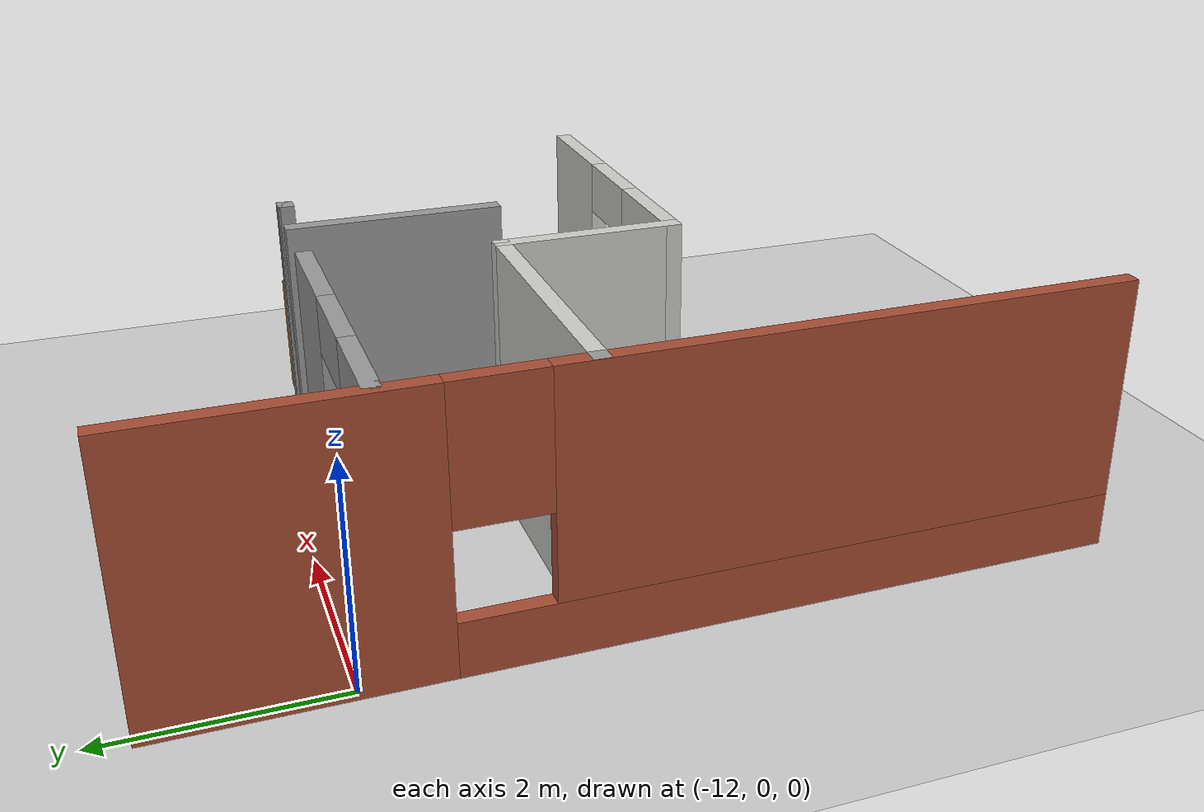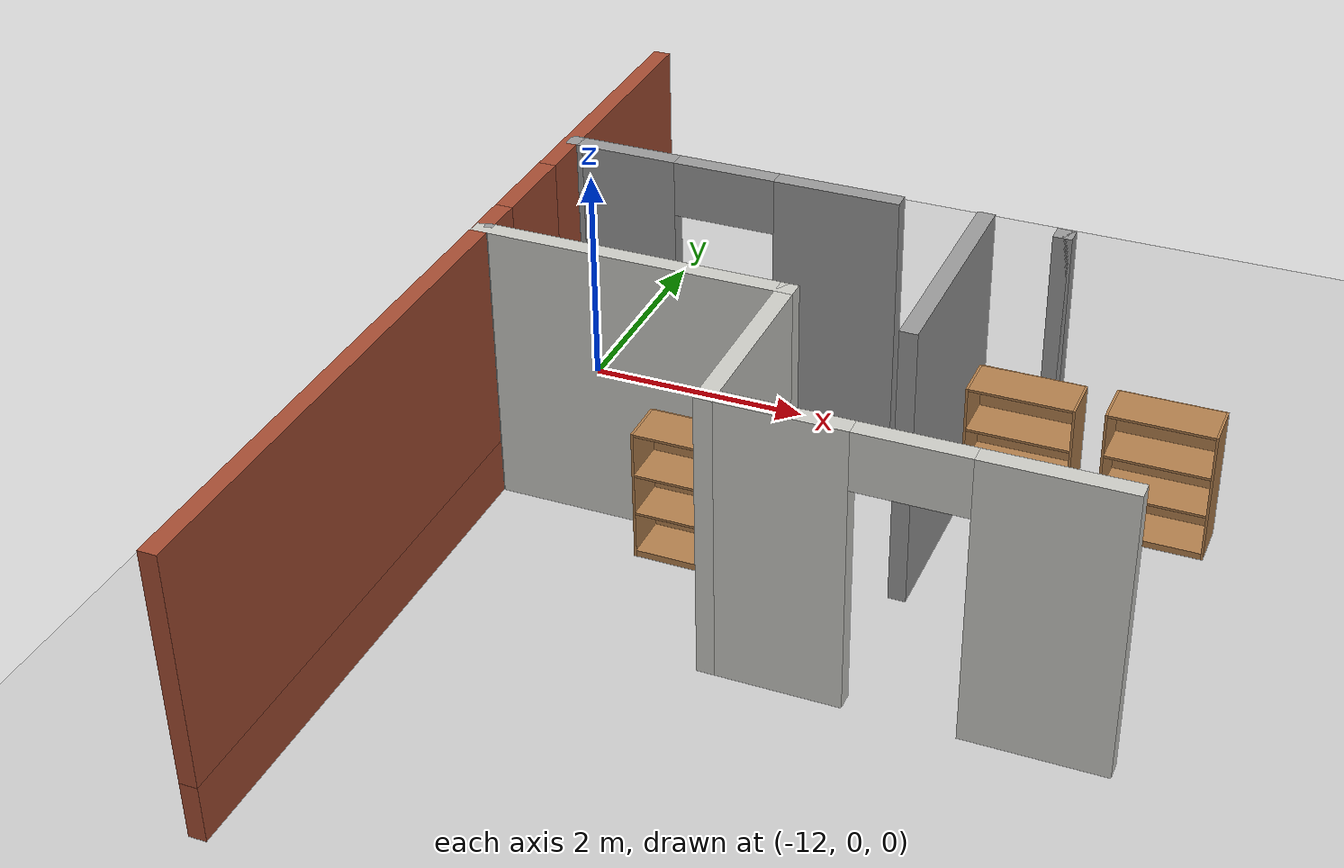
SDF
<sdf version="1.6">
 <world name="default">
  <model name="ground_plane">
   <static>1</static>
   <link name="link">
    <collision name="collision">
     <geometry><plane><normal>0 0 1</normal><size>100 100</size></plane></geometry>
     <surface><friction><ode><mu>100</mu><mu2>50</mu2></ode></friction></surface>
    </collision>
    <visual name="visual">
     <cast_shadows>0</cast_shadows>
     <geometry><plane><normal>0 0 1</normal><size>100 100</size></plane></geometry>
     <material>
      <script><uri>file://media/materials/scripts/gazebo.material</uri><name>Gazebo/Grey</name></script>
     </material>
    </visual>
   </link>
  </model>
  <model name="Building">
   <link name="Wall_0">
    <pose>-5.83944 -1.9 0 0 0 -1.5708</pose>
    <visual name="Wall_0_Visual_0">
     <pose>-2.91813 0 1.25 0 -0 0</pose>
     <geometry><box><size>2.41374 0.15 2.5</size></box></geometry>
     <material>
      <script><uri>file://media/materials/scripts/gazebo.material</uri><name>Gazebo/Bricks</name></script>
      <ambient>1 1 1 1</ambient>
      <shader type="pixel"/>
      <diffuse>1 1 1 1</diffuse>
      <specular>0.2 0.2 0.2 1</specular>
      <emissive>0 0 0 1</emissive>
     </material>
     <meta><layer>0</layer></meta>
    </visual>
    <visual name="Wall_0_Visual_1">
     <pose>1.20687 0 0.25 0 -0 0</pose>
     <geometry><box><size>5.83626 0.15 0.5</size></box></geometry>
     <material>
      <script><uri>file://media/materials/scripts/gazebo.material</uri><name>Gazebo/Bricks</name></script>
      <ambient>1 1 1 1</ambient>
      <shader type="pixel"/>
      <diffuse>1 1 1 1</diffuse>
      <specular>0.2 0.2 0.2 1</specular>
      <emissive>0 0 0 1</emissive>
     </material>
     <meta><layer>0</layer></meta>
    </visual>
    <visual name="Wall_0_Visual_2">
     <pose>1.60687 0 1.5 0 -0 0</pose>
     <geometry><box><size>5.03626 0.15 2</size></box></geometry>
     <material>
      <script><uri>file://media/materials/scripts/gazebo.material</uri><name>Gazebo/Bricks</name></script>
      <ambient>1 1 1 1</ambient>
      <shader type="pixel"/>
      <diffuse>1 1 1 1</diffuse>
      <specular>0.2 0.2 0.2 1</specular>
      <emissive>0 0 0 1</emissive>
     </material>
     <meta><layer>0</layer></meta>
    </visual>
    <visual name="Wall_0_Visual_3">
     <pose>-1.31126 0 1.9 0 -0 0</pose>
     <geometry><box><size>0.8 0.15 1.2</size></box></geometry>
     <material>
      <script><uri>file://media/materials/scripts/gazebo.material</uri><name>Gazebo/Bricks</name></script>
      <ambient>1 1 1 1</ambient>
      <shader type="pixel"/>
      <diffuse>1 1 1 1</diffuse>
      <specular>0.2 0.2 0.2 1</specular>
      <emissive>0 0 0 1</emissive>
     </material>
     <meta><layer>0</layer></meta>
    </visual>
    <collision name="Wall_0_Collision_0">
     <pose>-2.91813 0 1.25 0 -0 0</pose>
     <geometry><box><size>2.41374 0.15 2.5</size></box></geometry>
     <surface>
      <friction>
       <ode><mu>1</mu><mu2>1</mu2><fdir1>0 0 0</fdir1><slip1>0</slip1><slip2>0</slip2></ode>
       <torsional>
        <coefficient>1</coefficient>
        <patch_radius>0</patch_radius>
        <surface_radius>0</surface_radius>
        <use_patch_radius>1</use_patch_radius>
        <ode><slip>0</slip></ode>
       </torsional>
      </friction>
      <bounce><restitution_coefficient>0</restitution_coefficient><threshold>1e+06</threshold></bounce>
      <contact>
       <collide_without_contact>0</collide_without_contact>
       <collide_without_contact_bitmask>1</collide_without_contact_bitmask>
       <collide_bitmask>1</collide_bitmask>
       <ode>
        <soft_cfm>0</soft_cfm>
        <soft_erp>0.2</soft_erp>
        <kp>1e+13</kp>
        <kd>1</kd>
        <max_vel>0.01</max_vel>
        <min_depth>0</min_depth>
       </ode>
       <bullet>
        <split_impulse>1</split_impulse>
        <split_impulse_penetration_threshold>-0.01</split_impulse_penetration_threshold>
        <soft_cfm>0</soft_cfm>
        <soft_erp>0.2</soft_erp>
        <kp>1e+13</kp>
        <kd>1</kd>
       </bullet>
      </contact>
     </surface>
    </collision>
    <collision name="Wall_0_Collision_1">
     <pose>1.20687 0 0.25 0 -0 0</pose>
     <geometry><box><size>5.83626 0.15 0.5</size></box></geometry>
     <surface>
      <friction>
       <ode><mu>1</mu><mu2>1</mu2><fdir1>0 0 0</fdir1><slip1>0</slip1><slip2>0</slip2></ode>
       <torsional>
        <coefficient>1</coefficient>
        <patch_radius>0</patch_radius>
        <surface_radius>0</surface_radius>
        <use_patch_radius>1</use_patch_radius>
        <ode><slip>0</slip></ode>
       </torsional>
      </friction>
      <bounce><restitution_coefficient>0</restitution_coefficient><threshold>1e+06</threshold></bounce>
      <contact>
       <collide_without_contact>0</collide_without_contact>
       <collide_without_contact_bitmask>1</collide_without_contact_bitmask>
       <collide_bitmask>1</collide_bitmask>
       <ode>
        <soft_cfm>0</soft_cfm>
        <soft_erp>0.2</soft_erp>
        <kp>1e+13</kp>
        <kd>1</kd>
        <max_vel>0.01</max_vel>
        <min_depth>0</min_depth>
       </ode>
       <bullet>
        <split_impulse>1</split_impulse>
        <split_impulse_penetration_threshold>-0.01</split_impulse_penetration_threshold>
        <soft_cfm>0</soft_cfm>
        <soft_erp>0.2</soft_erp>
        <kp>1e+13</kp>
        <kd>1</kd>
       </bullet>
      </contact>
     </surface>
    </collision>
    <collision name="Wall_0_Collision_2">
     <pose>1.60687 0 1.5 0 -0 0</pose>
     <geometry><box><size>5.03626 0.15 2</size></box></geometry>
     <surface>
      <friction>
       <ode><mu>1</mu><mu2>1</mu2><fdir1>0 0 0</fdir1><slip1>0</slip1><slip2>0</slip2></ode>
       <torsional>
        <coefficient>1</coefficient>
        <patch_radius>0</patch_radius>
        <surface_radius>0</surface_radius>
        <use_patch_radius>1</use_patch_radius>
        <ode><slip>0</slip></ode>
       </torsional>
      </friction>
      <bounce><restitution_coefficient>0</restitution_coefficient><threshold>1e+06</threshold></bounce>
      <contact>
       <collide_without_contact>0</collide_without_contact>
       <collide_without_contact_bitmask>1</collide_without_contact_bitmask>
       <collide_bitmask>1</collide_bitmask>
       <ode>
        <soft_cfm>0</soft_cfm>
        <soft_erp>0.2</soft_erp>
        <kp>1e+13</kp>
        <kd>1</kd>
        <max_vel>0.01</max_vel>
        <min_depth>0</min_depth>
       </ode>
       <bullet>
        <split_impulse>1</split_impulse>
        <split_impulse_penetration_threshold>-0.01</split_impulse_penetration_threshold>
        <soft_cfm>0</soft_cfm>
        <soft_erp>0.2</soft_erp>
        <kp>1e+13</kp>
        <kd>1</kd>
       </bullet>
      </contact>
     </surface>
    </collision>
    <collision name="Wall_0_Collision_3">
     <pose>-1.31126 0 1.9 0 -0 0</pose>
     <geometry><box><size>0.8 0.15 1.2</size></box></geometry>
     <surface>
      <friction>
       <ode><mu>1</mu><mu2>1</mu2><fdir1>0 0 0</fdir1><slip1>0</slip1><slip2>0</slip2></ode>
       <torsional>
        <coefficient>1</coefficient>
        <patch_radius>0</patch_radius>
        <surface_radius>0</surface_radius>
        <use_patch_radius>1</use_patch_radius>
        <ode><slip>0</slip></ode>
       </torsional>
      </friction>
      <bounce><restitution_coefficient>0</restitution_coefficient><threshold>1e+06</threshold></bounce>
      <contact>
       <collide_without_contact>0</collide_without_contact>
       <collide_without_contact_bitmask>1</collide_without_contact_bitmask>
       <collide_bitmask>1</collide_bitmask>
       <ode>
        <soft_cfm>0</soft_cfm>
        <soft_erp>0.2</soft_erp>
        <kp>1e+13</kp>
        <kd>1</kd>
        <max_vel>0.01</max_vel>
        <min_depth>0</min_depth>
       </ode>
       <bullet>
        <split_impulse>1</split_impulse>
        <split_impulse_penetration_threshold>-0.01</split_impulse_penetration_threshold>
        <soft_cfm>0</soft_cfm>
        <soft_erp>0.2</soft_erp>
        <kp>1e+13</kp>
        <kd>1</kd>
       </bullet>
      </contact>
     </surface>
    </collision>
   </link>
   <link name="Wall_13">
    <pose>-1.6833 -2.96947 0 0 -0 3.14159</pose>
    <visual name="Wall_13_Visual_0">
     <pose>-1.03974 0 1.25 0 -0 0</pose>
     <geometry><box><size>1.17053 0.15 2.5</size></box></geometry>
     <material>
      <script><uri>file://media/materials/scripts/gazebo.material</uri><name>Gazebo/CeilingTiled</name></script>
      <ambient>0.760784 0.662745 0.627451 1</ambient>
      <shader type="pixel"/>
      <diffuse>1 1 1 1</diffuse>
      <specular>0 0 0 1</specular>
      <emissive>0 0 0 1</emissive>
     </material>
     <meta><layer>0</layer></meta>
    </visual>
    <visual name="Wall_13_Visual_1">
     <pose>1.03527 0 1.25 0 -0 0</pose>
     <geometry><box><size>1.17947 0.15 2.5</size></box></geometry>
     <material>
      <script><uri>file://media/materials/scripts/gazebo.material</uri><name>Gazebo/CeilingTiled</name></script>
      <ambient>0.760784 0.662745 0.627451 1</ambient>
      <shader type="pixel"/>
      <diffuse>1 1 1 1</diffuse>
      <specular>0 0 0 1</specular>
      <emissive>0 0 0 1</emissive>
     </material>
     <meta><layer>0</layer></meta>
    </visual>
    <visual name="Wall_13_Visual_2">
     <pose>-0.00447 0 2.25 0 -0 0</pose>
     <geometry><box><size>0.9 0.15 0.5</size></box></geometry>
     <material>
      <script><uri>file://media/materials/scripts/gazebo.material</uri><name>Gazebo/CeilingTiled</name></script>
      <ambient>0.760784 0.662745 0.627451 1</ambient>
      <shader type="pixel"/>
      <diffuse>1 1 1 1</diffuse>
      <specular>0 0 0 1</specular>
      <emissive>0 0 0 1</emissive>
     </material>
     <meta><layer>0</layer></meta>
    </visual>
    <collision name="Wall_13_Collision_0">
     <pose>-1.03974 0 1.25 0 -0 0</pose>
     <geometry><box><size>1.17053 0.15 2.5</size></box></geometry>
     <surface>
      <friction>
       <ode><mu>1</mu><mu2>1</mu2><fdir1>0 0 0</fdir1><slip1>0</slip1><slip2>0</slip2></ode>
       <torsional>
        <coefficient>1</coefficient>
        <patch_radius>0</patch_radius>
        <surface_radius>0</surface_radius>
        <use_patch_radius>1</use_patch_radius>
        <ode><slip>0</slip></ode>
       </torsional>
      </friction>
      <bounce><restitution_coefficient>0</restitution_coefficient><threshold>1e+06</threshold></bounce>
      <contact>
       <collide_without_contact>0</collide_without_contact>
       <collide_without_contact_bitmask>1</collide_without_contact_bitmask>
       <collide_bitmask>1</collide_bitmask>
       <ode>
        <soft_cfm>0</soft_cfm>
        <soft_erp>0.2</soft_erp>
        <kp>1e+13</kp>
        <kd>1</kd>
        <max_vel>0.01</max_vel>
        <min_depth>0</min_depth>
       </ode>
       <bullet>
        <split_impulse>1</split_impulse>
        <split_impulse_penetration_threshold>-0.01</split_impulse_penetration_threshold>
        <soft_cfm>0</soft_cfm>
        <soft_erp>0.2</soft_erp>
        <kp>1e+13</kp>
        <kd>1</kd>
       </bullet>
      </contact>
     </surface>
    </collision>
    <collision name="Wall_13_Collision_1">
     <pose>1.03527 0 1.25 0 -0 0</pose>
     <geometry><box><size>1.17947 0.15 2.5</size></box></geometry>
     <surface>
      <friction>
       <ode><mu>1</mu><mu2>1</mu2><fdir1>0 0 0</fdir1><slip1>0</slip1><slip2>0</slip2></ode>
       <torsional>
        <coefficient>1</coefficient>
        <patch_radius>0</patch_radius>
        <surface_radius>0</surface_radius>
        <use_patch_radius>1</use_patch_radius>
        <ode><slip>0</slip></ode>
       </torsional>
      </friction>
      <bounce><restitution_coefficient>0</restitution_coefficient><threshold>1e+06</threshold></bounce>
      <contact>
       <collide_without_contact>0</collide_without_contact>
       <collide_without_contact_bitmask>1</collide_without_contact_bitmask>
       <collide_bitmask>1</collide_bitmask>
       <ode>
        <soft_cfm>0</soft_cfm>
        <soft_erp>0.2</soft_erp>
        <kp>1e+13</kp>
        <kd>1</kd>
        <max_vel>0.01</max_vel>
        <min_depth>0</min_depth>
       </ode>
       <bullet>
        <split_impulse>1</split_impulse>
        <split_impulse_penetration_threshold>-0.01</split_impulse_penetration_threshold>
        <soft_cfm>0</soft_cfm>
        <soft_erp>0.2</soft_erp>
        <kp>1e+13</kp>
        <kd>1</kd>
       </bullet>
      </contact>
     </surface>
    </collision>
    <collision name="Wall_13_Collision_2">
     <pose>-0.00447 0 2.25 0 -0 0</pose>
     <geometry><box><size>0.9 0.15 0.5</size></box></geometry>
     <surface>
      <friction>
       <ode><mu>1</mu><mu2>1</mu2><fdir1>0 0 0</fdir1><slip1>0</slip1><slip2>0</slip2></ode>
       <torsional>
        <coefficient>1</coefficient>
        <patch_radius>0</patch_radius>
        <surface_radius>0</surface_radius>
        <use_patch_radius>1</use_patch_radius>
        <ode><slip>0</slip></ode>
       </torsional>
      </friction>
      <bounce><restitution_coefficient>0</restitution_coefficient><threshold>1e+06</threshold></bounce>
      <contact>
       <collide_without_contact>0</collide_without_contact>
       <collide_without_contact_bitmask>1</collide_without_contact_bitmask>
       <collide_bitmask>1</collide_bitmask>
       <ode>
        <soft_cfm>0</soft_cfm>
        <soft_erp>0.2</soft_erp>
        <kp>1e+13</kp>
        <kd>1</kd>
        <max_vel>0.01</max_vel>
        <min_depth>0</min_depth>
       </ode>
       <bullet>
        <split_impulse>1</split_impulse>
        <split_impulse_penetration_threshold>-0.01</split_impulse_penetration_threshold>
        <soft_cfm>0</soft_cfm>
        <soft_erp>0.2</soft_erp>
        <kp>1e+13</kp>
        <kd>1</kd>
       </bullet>
      </contact>
     </surface>
    </collision>
   </link>
   <link name="Wall_14">
    <pose>-3.2333 -2.16947 0 0 -0 1.5708</pose>
    <visual name="Wall_14_Visual">
     <pose>0 0 1.25 0 -0 0</pose>
     <geometry><box><size>1.75 0.15 2.5</size></box></geometry>
     <material>
      <script><uri>file://media/materials/scripts/gazebo.material</uri><name>Gazebo/CeilingTiled</name></script>
      <ambient>1 1 1 1</ambient>
      <shader type="pixel"/>
      <diffuse>1 1 1 1</diffuse>
      <specular>0 0 0 1</specular>
      <emissive>0 0 0 1</emissive>
     </material>
     <meta><layer>0</layer></meta>
    </visual>
    <collision name="Wall_14_Collision">
     <pose>0 0 1.25 0 -0 0</pose>
     <geometry><box><size>1.75 0.15 2.5</size></box></geometry>
     <surface>
      <friction>
       <ode><mu>1</mu><mu2>1</mu2><fdir1>0 0 0</fdir1><slip1>0</slip1><slip2>0</slip2></ode>
       <torsional>
        <coefficient>1</coefficient>
        <patch_radius>0</patch_radius>
        <surface_radius>0</surface_radius>
        <use_patch_radius>1</use_patch_radius>
        <ode><slip>0</slip></ode>
       </torsional>
      </friction>
      <bounce><restitution_coefficient>0</restitution_coefficient><threshold>1e+06</threshold></bounce>
      <contact>
       <collide_without_contact>0</collide_without_contact>
       <collide_without_contact_bitmask>1</collide_without_contact_bitmask>
       <collide_bitmask>1</collide_bitmask>
       <ode>
        <soft_cfm>0</soft_cfm>
        <soft_erp>0.2</soft_erp>
        <kp>1e+13</kp>
        <kd>1</kd>
        <max_vel>0.01</max_vel>
        <min_depth>0</min_depth>
       </ode>
       <bullet>
        <split_impulse>1</split_impulse>
        <split_impulse_penetration_threshold>-0.01</split_impulse_penetration_threshold>
        <soft_cfm>0</soft_cfm>
        <soft_erp>0.2</soft_erp>
        <kp>1e+13</kp>
        <kd>1</kd>
       </bullet>
      </contact>
     </surface>
    </collision>
   </link>
   <link name="Wall_15">
    <pose>-4.5333 -1.36947 0 0 -0 3.14159</pose>
    <visual name="Wall_15_Visual">
     <pose>0 0 1.25 0 -0 0</pose>
     <geometry><box><size>2.75 0.15 2.5</size></box></geometry>
     <material>
      <script><uri>file://media/materials/scripts/gazebo.material</uri><name>Gazebo/CeilingTiled</name></script>
      <ambient>1 1 1 1</ambient>
      <shader type="pixel"/>
      <diffuse>1 1 1 1</diffuse>
      <specular>0 0 0 1</specular>
      <emissive>0 0 0 1</emissive>
     </material>
     <meta><layer>0</layer></meta>
    </visual>
    <collision name="Wall_15_Collision">
     <pose>0 0 1.25 0 -0 0</pose>
     <geometry><box><size>2.75 0.15 2.5</size></box></geometry>
     <surface>
      <friction>
       <ode><mu>1</mu><mu2>1</mu2><fdir1>0 0 0</fdir1><slip1>0</slip1><slip2>0</slip2></ode>
       <torsional>
        <coefficient>1</coefficient>
        <patch_radius>0</patch_radius>
        <surface_radius>0</surface_radius>
        <use_patch_radius>1</use_patch_radius>
        <ode><slip>0</slip></ode>
       </torsional>
      </friction>
      <bounce><restitution_coefficient>0</restitution_coefficient><threshold>1e+06</threshold></bounce>
      <contact>
       <collide_without_contact>0</collide_without_contact>
       <collide_without_contact_bitmask>1</collide_without_contact_bitmask>
       <collide_bitmask>1</collide_bitmask>
       <ode>
        <soft_cfm>0</soft_cfm>
        <soft_erp>0.2</soft_erp>
        <kp>1e+13</kp>
        <kd>1</kd>
        <max_vel>0.01</max_vel>
        <min_depth>0</min_depth>
       </ode>
       <bullet>
        <split_impulse>1</split_impulse>
        <split_impulse_penetration_threshold>-0.01</split_impulse_penetration_threshold>
        <soft_cfm>0</soft_cfm>
        <soft_erp>0.2</soft_erp>
        <kp>1e+13</kp>
        <kd>1</kd>
       </bullet>
      </contact>
     </surface>
    </collision>
   </link>
   <link name="Wall_16">
    <pose>-5.8333 -1.36947 0 0 -0 0</pose>
    <visual name="Wall_16_Visual">
     <pose>0 0 1.25 0 -0 0</pose>
     <geometry><box><size>0.15 0.15 2.5</size></box></geometry>
     <material>
      <script><uri>file://media/materials/scripts/gazebo.material</uri><name>Gazebo/Grey</name></script>
      <ambient>1 1 1 1</ambient>
      <shader type="pixel"/>
      <diffuse>0.7 0.7 0.7 1</diffuse>
      <specular>0.01 0.01 0.01 1</specular>
      <emissive>0 0 0 1</emissive>
     </material>
     <meta><layer>0</layer></meta>
    </visual>
    <collision name="Wall_16_Collision">
     <pose>0 0 1.25 0 -0 0</pose>
     <geometry><box><size>0.15 0.15 2.5</size></box></geometry>
     <surface>
      <friction>
       <ode><mu>1</mu><mu2>1</mu2><fdir1>0 0 0</fdir1><slip1>0</slip1><slip2>0</slip2></ode>
       <torsional>
        <coefficient>1</coefficient>
        <patch_radius>0</patch_radius>
        <surface_radius>0</surface_radius>
        <use_patch_radius>1</use_patch_radius>
        <ode><slip>0</slip></ode>
       </torsional>
      </friction>
      <bounce><restitution_coefficient>0</restitution_coefficient><threshold>1e+06</threshold></bounce>
      <contact>
       <collide_without_contact>0</collide_without_contact>
       <collide_without_contact_bitmask>1</collide_without_contact_bitmask>
       <collide_bitmask>1</collide_bitmask>
       <ode>
        <soft_cfm>0</soft_cfm>
        <soft_erp>0.2</soft_erp>
        <kp>1e+13</kp>
        <kd>1</kd>
        <max_vel>0.01</max_vel>
        <min_depth>0</min_depth>
       </ode>
       <bullet>
        <split_impulse>1</split_impulse>
        <split_impulse_penetration_threshold>-0.01</split_impulse_penetration_threshold>
        <soft_cfm>0</soft_cfm>
        <soft_erp>0.2</soft_erp>
        <kp>1e+13</kp>
        <kd>1</kd>
       </bullet>
      </contact>
     </surface>
    </collision>
   </link>
   <link name="Wall_22">
    <pose>-4.36444 0.3 0 0 -0 3.14159</pose>
    <visual name="Wall_22_Visual_0">
     <pose>-0.951516 0 1.25 0 -0 0</pose>
     <geometry><box><size>1.09697 0.15 2.5</size></box></geometry>
     <material>
      <script><uri>file://media/materials/scripts/gazebo.material</uri><name>Gazebo/Grey</name></script>
      <ambient>1 1 1 1</ambient>
      <shader type="pixel"/>
      <diffuse>0.7 0.7 0.7 1</diffuse>
      <specular>0.01 0.01 0.01 1</specular>
      <emissive>0 0 0 1</emissive>
     </material>
     <meta><layer>0</layer></meta>
    </visual>
    <visual name="Wall_22_Visual_1">
     <pose>0.998484 0 1.25 0 -0 0</pose>
     <geometry><box><size>1.00303 0.15 2.5</size></box></geometry>
     <material>
      <script><uri>file://media/materials/scripts/gazebo.material</uri><name>Gazebo/Grey</name></script>
      <ambient>1 1 1 1</ambient>
      <shader type="pixel"/>
      <diffuse>0.7 0.7 0.7 1</diffuse>
      <specular>0.01 0.01 0.01 1</specular>
      <emissive>0 0 0 1</emissive>
     </material>
     <meta><layer>0</layer></meta>
    </visual>
    <visual name="Wall_22_Visual_2">
     <pose>0.046968 0 2.25 0 -0 0</pose>
     <geometry><box><size>0.9 0.15 0.5</size></box></geometry>
     <material>
      <script><uri>file://media/materials/scripts/gazebo.material</uri><name>Gazebo/Grey</name></script>
      <ambient>1 1 1 1</ambient>
      <shader type="pixel"/>
      <diffuse>0.7 0.7 0.7 1</diffuse>
      <specular>0.01 0.01 0.01 1</specular>
      <emissive>0 0 0 1</emissive>
     </material>
     <meta><layer>0</layer></meta>
    </visual>
    <collision name="Wall_22_Collision_0">
     <pose>-0.951516 0 1.25 0 -0 0</pose>
     <geometry><box><size>1.09697 0.15 2.5</size></box></geometry>
     <surface>
      <friction>
       <ode><mu>1</mu><mu2>1</mu2><fdir1>0 0 0</fdir1><slip1>0</slip1><slip2>0</slip2></ode>
       <torsional>
        <coefficient>1</coefficient>
        <patch_radius>0</patch_radius>
        <surface_radius>0</surface_radius>
        <use_patch_radius>1</use_patch_radius>
        <ode><slip>0</slip></ode>
       </torsional>
      </friction>
      <bounce><restitution_coefficient>0</restitution_coefficient><threshold>1e+06</threshold></bounce>
      <contact>
       <collide_without_contact>0</collide_without_contact>
       <collide_without_contact_bitmask>1</collide_without_contact_bitmask>
       <collide_bitmask>1</collide_bitmask>
       <ode>
        <soft_cfm>0</soft_cfm>
        <soft_erp>0.2</soft_erp>
        <kp>1e+13</kp>
        <kd>1</kd>
        <max_vel>0.01</max_vel>
        <min_depth>0</min_depth>
       </ode>
       <bullet>
        <split_impulse>1</split_impulse>
        <split_impulse_penetration_threshold>-0.01</split_impulse_penetration_threshold>
        <soft_cfm>0</soft_cfm>
        <soft_erp>0.2</soft_erp>
        <kp>1e+13</kp>
        <kd>1</kd>
       </bullet>
      </contact>
     </surface>
    </collision>
    <collision name="Wall_22_Collision_1">
     <pose>0.998484 0 1.25 0 -0 0</pose>
     <geometry><box><size>1.00303 0.15 2.5</size></box></geometry>
     <surface>
      <friction>
       <ode><mu>1</mu><mu2>1</mu2><fdir1>0 0 0</fdir1><slip1>0</slip1><slip2>0</slip2></ode>
       <torsional>
        <coefficient>1</coefficient>
        <patch_radius>0</patch_radius>
        <surface_radius>0</surface_radius>
        <use_patch_radius>1</use_patch_radius>
        <ode><slip>0</slip></ode>
       </torsional>
      </friction>
      <bounce><restitution_coefficient>0</restitution_coefficient><threshold>1e+06</threshold></bounce>
      <contact>
       <collide_without_contact>0</collide_without_contact>
       <collide_without_contact_bitmask>1</collide_without_contact_bitmask>
       <collide_bitmask>1</collide_bitmask>
       <ode>
        <soft_cfm>0</soft_cfm>
        <soft_erp>0.2</soft_erp>
        <kp>1e+13</kp>
        <kd>1</kd>
        <max_vel>0.01</max_vel>
        <min_depth>0</min_depth>
       </ode>
       <bullet>
        <split_impulse>1</split_impulse>
        <split_impulse_penetration_threshold>-0.01</split_impulse_penetration_threshold>
        <soft_cfm>0</soft_cfm>
        <soft_erp>0.2</soft_erp>
        <kp>1e+13</kp>
        <kd>1</kd>
       </bullet>
      </contact>
     </surface>
    </collision>
    <collision name="Wall_22_Collision_2">
     <pose>0.046968 0 2.25 0 -0 0</pose>
     <geometry><box><size>0.9 0.15 0.5</size></box></geometry>
     <surface>
      <friction>
       <ode><mu>1</mu><mu2>1</mu2><fdir1>0 0 0</fdir1><slip1>0</slip1><slip2>0</slip2></ode>
       <torsional>
        <coefficient>1</coefficient>
        <patch_radius>0</patch_radius>
        <surface_radius>0</surface_radius>
        <use_patch_radius>1</use_patch_radius>
        <ode><slip>0</slip></ode>
       </torsional>
      </friction>
      <bounce><restitution_coefficient>0</restitution_coefficient><threshold>1e+06</threshold></bounce>
      <contact>
       <collide_without_contact>0</collide_without_contact>
       <collide_without_contact_bitmask>1</collide_without_contact_bitmask>
       <collide_bitmask>1</collide_bitmask>
       <ode>
        <soft_cfm>0</soft_cfm>
        <soft_erp>0.2</soft_erp>
        <kp>1e+13</kp>
        <kd>1</kd>
        <max_vel>0.01</max_vel>
        <min_depth>0</min_depth>
       </ode>
       <bullet>
        <split_impulse>1</split_impulse>
        <split_impulse_penetration_threshold>-0.01</split_impulse_penetration_threshold>
        <soft_cfm>0</soft_cfm>
        <soft_erp>0.2</soft_erp>
        <kp>1e+13</kp>
        <kd>1</kd>
       </bullet>
      </contact>
     </surface>
    </collision>
   </link>
   <link name="Wall_23">
    <pose>-5.78944 0.3 0 0 -0 0</pose>
    <visual name="Wall_23_Visual">
     <pose>0 0 1.25 0 -0 0</pose>
     <geometry><box><size>0.15 0.15 2.5</size></box></geometry>
     <material>
      <script><uri>file://media/materials/scripts/gazebo.material</uri><name>Gazebo/Grey</name></script>
      <ambient>1 1 1 1</ambient>
      <shader type="pixel"/>
      <diffuse>0.7 0.7 0.7 1</diffuse>
      <specular>0.01 0.01 0.01 1</specular>
      <emissive>0 0 0 1</emissive>
     </material>
     <meta><layer>0</layer></meta>
    </visual>
    <collision name="Wall_23_Collision">
     <pose>0 0 1.25 0 -0 0</pose>
     <geometry><box><size>0.15 0.15 2.5</size></box></geometry>
     <surface>
      <friction>
       <ode><mu>1</mu><mu2>1</mu2><fdir1>0 0 0</fdir1><slip1>0</slip1><slip2>0</slip2></ode>
       <torsional>
        <coefficient>1</coefficient>
        <patch_radius>0</patch_radius>
        <surface_radius>0</surface_radius>
        <use_patch_radius>1</use_patch_radius>
        <ode><slip>0</slip></ode>
       </torsional>
      </friction>
      <bounce><restitution_coefficient>0</restitution_coefficient><threshold>1e+06</threshold></bounce>
      <contact>
       <collide_without_contact>0</collide_without_contact>
       <collide_without_contact_bitmask>1</collide_without_contact_bitmask>
       <collide_bitmask>1</collide_bitmask>
       <ode>
        <soft_cfm>0</soft_cfm>
        <soft_erp>0.2</soft_erp>
        <kp>1e+13</kp>
        <kd>1</kd>
        <max_vel>0.01</max_vel>
        <min_depth>0</min_depth>
       </ode>
       <bullet>
        <split_impulse>1</split_impulse>
        <split_impulse_penetration_threshold>-0.01</split_impulse_penetration_threshold>
        <soft_cfm>0</soft_cfm>
        <soft_erp>0.2</soft_erp>
        <kp>1e+13</kp>
        <kd>1</kd>
       </bullet>
      </contact>
     </surface>
    </collision>
   </link>
   <link name="Wall_25">
    <pose>-2.16346 -0.644844 0 0 0 -1.5708</pose>
    <visual name="Wall_25_Visual">
     <pose>0 0 1.25 0 -0 0</pose>
     <geometry><box><size>2 0.15 2.5</size></box></geometry>
     <material>
      <script><uri>file://media/materials/scripts/gazebo.material</uri><name>Gazebo/Grey</name></script>
      <ambient>1 1 1 1</ambient>
      <shader type="pixel"/>
      <diffuse>0.7 0.7 0.7 1</diffuse>
      <specular>0.01 0.01 0.01 1</specular>
      <emissive>0 0 0 1</emissive>
     </material>
     <meta><layer>0</layer></meta>
    </visual>
    <collision name="Wall_25_Collision">
     <pose>0 0 1.25 0 -0 0</pose>
     <geometry><box><size>2 0.15 2.5</size></box></geometry>
     <surface>
      <friction>
       <ode><mu>1</mu><mu2>1</mu2><fdir1>0 0 0</fdir1><slip1>0</slip1><slip2>0</slip2></ode>
       <torsional>
        <coefficient>1</coefficient>
        <patch_radius>0</patch_radius>
        <surface_radius>0</surface_radius>
        <use_patch_radius>1</use_patch_radius>
        <ode><slip>0</slip></ode>
       </torsional>
      </friction>
      <bounce><restitution_coefficient>0</restitution_coefficient><threshold>1e+06</threshold></bounce>
      <contact>
       <collide_without_contact>0</collide_without_contact>
       <collide_without_contact_bitmask>1</collide_without_contact_bitmask>
       <collide_bitmask>1</collide_bitmask>
       <ode>
        <soft_cfm>0</soft_cfm>
        <soft_erp>0.2</soft_erp>
        <kp>1e+13</kp>
        <kd>1</kd>
        <max_vel>0.01</max_vel>
        <min_depth>0</min_depth>
       </ode>
       <bullet>
        <split_impulse>1</split_impulse>
        <split_impulse_penetration_threshold>-0.01</split_impulse_penetration_threshold>
        <soft_cfm>0</soft_cfm>
        <soft_erp>0.2</soft_erp>
        <kp>1e+13</kp>
        <kd>1</kd>
       </bullet>
      </contact>
     </surface>
    </collision>
   </link>
   <link name="Wall_41">
    <pose>-1.48444 0.25 0 0 -0 0</pose>
    <visual name="Wall_41_Visual">
     <pose>0 0 1.25 0 -0 0</pose>
     <geometry><box><size>0.16 0.15 2.5</size></box></geometry>
     <material>
      <script><uri>file://media/materials/scripts/gazebo.material</uri><name>Gazebo/Grey</name></script>
      <ambient>1 1 1 1</ambient>
      <shader type="pixel"/>
      <diffuse>0.7 0.7 0.7 1</diffuse>
      <specular>0.01 0.01 0.01 1</specular>
      <emissive>0 0 0 1</emissive>
     </material>
     <meta><layer>0</layer></meta>
    </visual>
    <collision name="Wall_41_Collision">
     <pose>0 0 1.25 0 -0 0</pose>
     <geometry><box><size>0.16 0.15 2.5</size></box></geometry>
     <surface>
      <friction>
       <ode><mu>1</mu><mu2>1</mu2><fdir1>0 0 0</fdir1><slip1>0</slip1><slip2>0</slip2></ode>
       <torsional>
        <coefficient>1</coefficient>
        <patch_radius>0</patch_radius>
        <surface_radius>0</surface_radius>
        <use_patch_radius>1</use_patch_radius>
        <ode><slip>0</slip></ode>
       </torsional>
      </friction>
      <bounce><restitution_coefficient>0</restitution_coefficient><threshold>1e+06</threshold></bounce>
      <contact>
       <collide_without_contact>0</collide_without_contact>
       <collide_without_contact_bitmask>1</collide_without_contact_bitmask>
       <collide_bitmask>1</collide_bitmask>
       <ode>
        <soft_cfm>0</soft_cfm>
        <soft_erp>0.2</soft_erp>
        <kp>1e+13</kp>
        <kd>1</kd>
        <max_vel>0.01</max_vel>
        <min_depth>0</min_depth>
       </ode>
       <bullet>
        <split_impulse>1</split_impulse>
        <split_impulse_penetration_threshold>-0.01</split_impulse_penetration_threshold>
        <soft_cfm>0</soft_cfm>
        <soft_erp>0.2</soft_erp>
        <kp>1e+13</kp>
        <kd>1</kd>
       </bullet>
      </contact>
     </surface>
    </collision>
   </link>
   <link name="Wall_42">
    <pose>-1.48444 0.25 0 0 -0 3.14159</pose>
    <visual name="Wall_42_Visual">
     <pose>0 0 1.25 0 -0 0</pose>
     <geometry><box><size>0.16 0.15 2.5</size></box></geometry>
     <material>
      <script><uri>file://media/materials/scripts/gazebo.material</uri><name>Gazebo/Grey</name></script>
      <ambient>1 1 1 1</ambient>
      <shader type="pixel"/>
      <diffuse>0.7 0.7 0.7 1</diffuse>
      <specular>0.01 0.01 0.01 1</specular>
      <emissive>0 0 0 1</emissive>
     </material>
     <meta><layer>0</layer></meta>
    </visual>
    <collision name="Wall_42_Collision">
     <pose>0 0 1.25 0 -0 0</pose>
     <geometry><box><size>0.16 0.15 2.5</size></box></geometry>
     <surface>
      <friction>
       <ode><mu>1</mu><mu2>1</mu2><fdir1>0 0 0</fdir1><slip1>0</slip1><slip2>0</slip2></ode>
       <torsional>
        <coefficient>1</coefficient>
        <patch_radius>0</patch_radius>
        <surface_radius>0</surface_radius>
        <use_patch_radius>1</use_patch_radius>
        <ode><slip>0</slip></ode>
       </torsional>
      </friction>
      <bounce><restitution_coefficient>0</restitution_coefficient><threshold>1e+06</threshold></bounce>
      <contact>
       <collide_without_contact>0</collide_without_contact>
       <collide_without_contact_bitmask>1</collide_without_contact_bitmask>
       <collide_bitmask>1</collide_bitmask>
       <ode>
        <soft_cfm>0</soft_cfm>
        <soft_erp>0.2</soft_erp>
        <kp>1e+13</kp>
        <kd>1</kd>
        <max_vel>0.01</max_vel>
        <min_depth>0</min_depth>
       </ode>
       <bullet>
        <split_impulse>1</split_impulse>
        <split_impulse_penetration_threshold>-0.01</split_impulse_penetration_threshold>
        <soft_cfm>0</soft_cfm>
        <soft_erp>0.2</soft_erp>
        <kp>1e+13</kp>
        <kd>1</kd>
       </bullet>
      </contact>
     </surface>
    </collision>
   </link>
   <static>1</static>
   <pose>-6.1852 -0.576906 0 0 -0 0</pose>
  </model>
  <model name="bookshelf_0">
   <static>1</static>
   <link name="link">
    <inertial><mass>1</mass></inertial>
    <collision name="back">
     <pose>0 0.005 0.6 0 -0 0</pose>
     <geometry><box><size>0.9 0.01 1.2</size></box></geometry>
    </collision>
    <visual name="visual1">
     <pose>0 0.005 0.6 0 -0 0</pose>
     <geometry><box><size>0.9 0.01 1.2</size></box></geometry>
     <material>
      <script><uri>file://media/materials/scripts/gazebo.material</uri><name>Gazebo/Wood</name></script>
     </material>
    </visual>
    <collision name="left_side">
     <pose>0.45 -0.195 0.6 0 -0 0</pose>
     <geometry><box><size>0.02 0.4 1.2</size></box></geometry>
    </collision>
    <visual name="visual2">
     <pose>0.45 -0.195 0.6 0 -0 0</pose>
     <geometry><box><size>0.02 0.4 1.2</size></box></geometry>
     <material>
      <script><uri>file://media/materials/scripts/gazebo.material</uri><name>Gazebo/Wood</name></script>
     </material>
    </visual>
    <collision name="right_side">
     <pose>-0.45 -0.195 0.6 0 -0 0</pose>
     <geometry><box><size>0.02 0.4 1.2</size></box></geometry>
    </collision>
    <visual name="visual3">
     <pose>-0.45 -0.195 0.6 0 -0 0</pose>
     <geometry><box><size>0.02 0.4 1.2</size></box></geometry>
     <material>
      <script><uri>file://media/materials/scripts/gazebo.material</uri><name>Gazebo/Wood</name></script>
     </material>
    </visual>
    <collision name="bottom">
     <pose>0 -0.195 0.03 0 -0 0</pose>
     <geometry><box><size>0.88 0.4 0.06</size></box></geometry>
    </collision>
    <visual name="visual4">
     <pose>0 -0.195 0.03 0 -0 0</pose>
     <geometry><box><size>0.88 0.4 0.06</size></box></geometry>
     <material>
      <script><uri>file://media/materials/scripts/gazebo.material</uri><name>Gazebo/Wood</name></script>
     </material>
    </visual>
    <collision name="top">
     <pose>0 -0.195 1.19 0 -0 0</pose>
     <geometry><box><size>0.88 0.4 0.02</size></box></geometry>
    </collision>
    <visual name="visual5">
     <pose>0 -0.195 1.19 0 -0 0</pose>
     <geometry><box><size>0.88 0.4 0.02</size></box></geometry>
     <material>
      <script><uri>file://media/materials/scripts/gazebo.material</uri><name>Gazebo/Wood</name></script>
     </material>
    </visual>
    <collision name="low_shelf">
     <pose>0 -0.195 0.43 0 -0 0</pose>
     <geometry><box><size>0.88 0.4 0.02</size></box></geometry>
    </collision>
    <visual name="visual6">
     <pose>0 -0.195 0.43 0 -0 0</pose>
     <geometry><box><size>0.88 0.4 0.02</size></box></geometry>
     <material>
      <script><uri>file://media/materials/scripts/gazebo.material</uri><name>Gazebo/Wood</name></script>
     </material>
    </visual>
    <collision name="high_shelf">
     <pose>0 -0.195 0.8 0 -0 0</pose>
     <geometry><box><size>0.88 0.4 0.02</size></box></geometry>
    </collision>
    <visual name="visual7">
     <pose>0 -0.195 0.8 0 -0 0</pose>
     <geometry><box><size>0.88 0.4 0.02</size></box></geometry>
     <material>
      <script><uri>file://media/materials/scripts/gazebo.material</uri><name>Gazebo/Wood</name></script>
     </material>
    </visual>
   </link>
   <pose>-10.0727 -2.07098 0 0 -0 0</pose>
  </model>
  <model name="bookshelf_4">
   <static>1</static>
   <link name="link">
    <inertial><mass>1</mass></inertial>
    <collision name="back">
     <pose>0 0.005 0.6 0 -0 0</pose>
     <geometry><box><size>0.9 0.01 1.2</size></box></geometry>
    </collision>
    <visual name="visual1">
     <pose>0 0.005 0.6 0 -0 0</pose>
     <geometry><box><size>0.9 0.01 1.2</size></box></geometry>
     <material>
      <script><uri>file://media/materials/scripts/gazebo.material</uri><name>Gazebo/Wood</name></script>
     </material>
    </visual>
    <collision name="left_side">
     <pose>0.45 -0.195 0.6 0 -0 0</pose>
     <geometry><box><size>0.02 0.4 1.2</size></box></geometry>
    </collision>
    <visual name="visual2">
     <pose>0.45 -0.195 0.6 0 -0 0</pose>
     <geometry><box><size>0.02 0.4 1.2</size></box></geometry>
     <material>
      <script><uri>file://media/materials/scripts/gazebo.material</uri><name>Gazebo/Wood</name></script>
     </material>
    </visual>
    <collision name="right_side">
     <pose>-0.45 -0.195 0.6 0 -0 0</pose>
     <geometry><box><size>0.02 0.4 1.2</size></box></geometry>
    </collision>
    <visual name="visual3">
     <pose>-0.45 -0.195 0.6 0 -0 0</pose>
     <geometry><box><size>0.02 0.4 1.2</size></box></geometry>
     <material>
      <script><uri>file://media/materials/scripts/gazebo.material</uri><name>Gazebo/Wood</name></script>
     </material>
    </visual>
    <collision name="bottom">
     <pose>0 -0.195 0.03 0 -0 0</pose>
     <geometry><box><size>0.88 0.4 0.06</size></box></geometry>
    </collision>
    <visual name="visual4">
     <pose>0 -0.195 0.03 0 -0 0</pose>
     <geometry><box><size>0.88 0.4 0.06</size></box></geometry>
     <material>
      <script><uri>file://media/materials/scripts/gazebo.material</uri><name>Gazebo/Wood</name></script>
     </material>
    </visual>
    <collision name="top">
     <pose>0 -0.195 1.19 0 -0 0</pose>
     <geometry><box><size>0.88 0.4 0.02</size></box></geometry>
    </collision>
    <visual name="visual5">
     <pose>0 -0.195 1.19 0 -0 0</pose>
     <geometry><box><size>0.88 0.4 0.02</size></box></geometry>
     <material>
      <script><uri>file://media/materials/scripts/gazebo.material</uri><name>Gazebo/Wood</name></script>
     </material>
    </visual>
    <collision name="low_shelf">
     <pose>0 -0.195 0.43 0 -0 0</pose>
     <geometry><box><size>0.88 0.4 0.02</size></box></geometry>
    </collision>
    <visual name="visual6">
     <pose>0 -0.195 0.43 0 -0 0</pose>
     <geometry><box><size>0.88 0.4 0.02</size></box></geometry>
     <material>
      <script><uri>file://media/materials/scripts/gazebo.material</uri><name>Gazebo/Wood</name></script>
     </material>
    </visual>
    <collision name="high_shelf">
     <pose>0 -0.195 0.8 0 -0 0</pose>
     <geometry><box><size>0.88 0.4 0.02</size></box></geometry>
    </collision>
    <visual name="visual7">
     <pose>0 -0.195 0.8 0 -0 0</pose>
     <geometry><box><size>0.88 0.4 0.02</size></box></geometry>
     <material>
      <script><uri>file://media/materials/scripts/gazebo.material</uri><name>Gazebo/Wood</name></script>
     </material>
    </visual>
   </link>
   <pose>-7.80268 -0.444217 0 0 -0 0</pose>
  </model>
  <model name="bookshelf_5">
   <static>1</static>
   <link name="link">
    <inertial><mass>1</mass></inertial>
    <collision name="back">
     <pose>0 0.005 0.6 0 -0 0</pose>
     <geometry><box><size>0.9 0.01 1.2</size></box></geometry>
    </collision>
    <visual name="visual1">
     <pose>0 0.005 0.6 0 -0 0</pose>
     <geometry><box><size>0.9 0.01 1.2</size></box></geometry>
     <material>
      <script><uri>file://media/materials/scripts/gazebo.material</uri><name>Gazebo/Wood</name></script>
     </material>
    </visual>
    <collision name="left_side">
     <pose>0.45 -0.195 0.6 0 -0 0</pose>
     <geometry><box><size>0.02 0.4 1.2</size></box></geometry>
    </collision>
    <visual name="visual2">
     <pose>0.45 -0.195 0.6 0 -0 0</pose>
     <geometry><box><size>0.02 0.4 1.2</size></box></geometry>
     <material>
      <script><uri>file://media/materials/scripts/gazebo.material</uri><name>Gazebo/Wood</name></script>
     </material>
    </visual>
    <collision name="right_side">
     <pose>-0.45 -0.195 0.6 0 -0 0</pose>
     <geometry><box><size>0.02 0.4 1.2</size></box></geometry>
    </collision>
    <visual name="visual3">
     <pose>-0.45 -0.195 0.6 0 -0 0</pose>
     <geometry><box><size>0.02 0.4 1.2</size></box></geometry>
     <material>
      <script><uri>file://media/materials/scripts/gazebo.material</uri><name>Gazebo/Wood</name></script>
     </material>
    </visual>
    <collision name="bottom">
     <pose>0 -0.195 0.03 0 -0 0</pose>
     <geometry><box><size>0.88 0.4 0.06</size></box></geometry>
    </collision>
    <visual name="visual4">
     <pose>0 -0.195 0.03 0 -0 0</pose>
     <geometry><box><size>0.88 0.4 0.06</size></box></geometry>
     <material>
      <script><uri>file://media/materials/scripts/gazebo.material</uri><name>Gazebo/Wood</name></script>
     </material>
    </visual>
    <collision name="top">
     <pose>0 -0.195 1.19 0 -0 0</pose>
     <geometry><box><size>0.88 0.4 0.02</size></box></geometry>
    </collision>
    <visual name="visual5">
     <pose>0 -0.195 1.19 0 -0 0</pose>
     <geometry><box><size>0.88 0.4 0.02</size></box></geometry>
     <material>
      <script><uri>file://media/materials/scripts/gazebo.material</uri><name>Gazebo/Wood</name></script>
     </material>
    </visual>
    <collision name="low_shelf">
     <pose>0 -0.195 0.43 0 -0 0</pose>
     <geometry><box><size>0.88 0.4 0.02</size></box></geometry>
    </collision>
    <visual name="visual6">
     <pose>0 -0.195 0.43 0 -0 0</pose>
     <geometry><box><size>0.88 0.4 0.02</size></box></geometry>
     <material>
      <script><uri>file://media/materials/scripts/gazebo.material</uri><name>Gazebo/Wood</name></script>
     </material>
    </visual>
    <collision name="high_shelf">
     <pose>0 -0.195 0.8 0 -0 0</pose>
     <geometry><box><size>0.88 0.4 0.02</size></box></geometry>
    </collision>
    <visual name="visual7">
     <pose>0 -0.195 0.8 0 -0 0</pose>
     <geometry><box><size>0.88 0.4 0.02</size></box></geometry>
     <material>
      <script><uri>file://media/materials/scripts/gazebo.material</uri><name>Gazebo/Wood</name></script>
     </material>
    </visual>
   </link>
   <pose>-6.64842 -0.401239 0 0 -0 0</pose>
  </model>
 </world>
</sdf>
